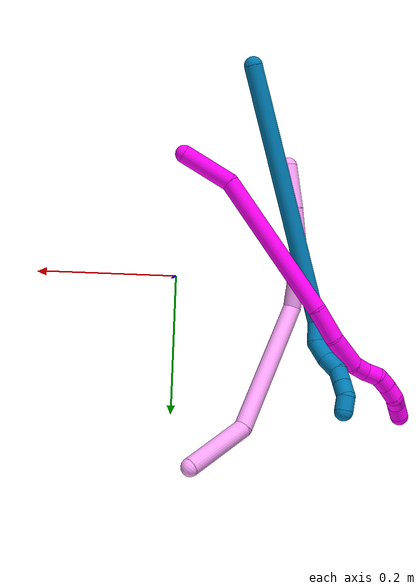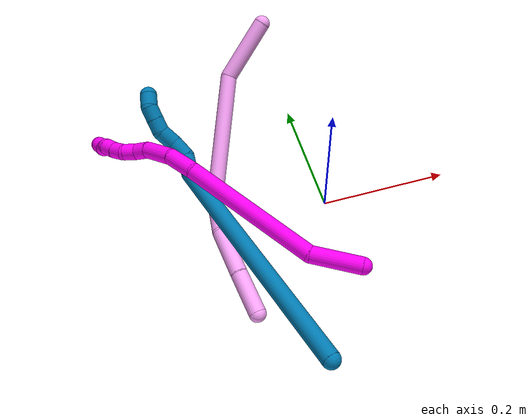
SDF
<sdf version="1.7">
 <world name="default">
  <model name="4">
   <static>0</static>
   <link name="4">
    <collision name="collision-cylinder-e_1_1_4">
     <pose>0.005808 0.022222 0.022075 -0.788719 0.183346 -0.076478</pose>
     <geometry><cylinder><radius>0.0125</radius><length>0.063713</length></cylinder></geometry>
     <surface>
      <friction><ode><mu>1.16</mu><mu2>1.16</mu2><slip1>0</slip1><slip2>0</slip2></ode></friction>
      <contact><ode><kp>1e+06</kp><kd>1</kd><max_vel>0</max_vel><min_depth>0.001</min_depth></ode></contact>
     </surface>
    </collision>
    <visual name="visual-cylinder-e_1_1_4">
     <pose>0.005808 0.022222 0.022075 -0.788719 0.183346 -0.076478</pose>
     <geometry><cylinder><radius>0.0125</radius><length>0.063713</length></cylinder></geometry>
     <material><ambient>1 0.65098 0.996078 1</ambient></material>
    </visual>
    <collision name="collision-cylinder-e_2_4_5">
     <pose>0.014452 0.070538 0.068873 -0.812358 0.078731 -0.033876</pose>
     <geometry><cylinder><radius>0.0125</radius><length>0.072116</length></cylinder></geometry>
     <surface>
      <friction><ode><mu>1.16</mu><mu2>1.16</mu2><slip1>0</slip1><slip2>0</slip2></ode></friction>
      <contact><ode><kp>1e+06</kp><kd>1</kd><max_vel>0</max_vel><min_depth>0.001</min_depth></ode></contact>
     </surface>
    </collision>
    <visual name="visual-cylinder-e_2_4_5">
     <pose>0.014452 0.070538 0.068873 -0.812358 0.078731 -0.033876</pose>
     <geometry><cylinder><radius>0.0125</radius><length>0.072116</length></cylinder></geometry>
     <material><ambient>1 0.65098 0.996078 1</ambient></material>
    </visual>
    <collision name="collision-cylinder-e_3_5_6">
     <pose>0.01163 0.12577 0.111494 -1.01998 -0.163966 0.091855</pose>
     <geometry><cylinder><radius>0.0125</radius><length>0.069322</length></cylinder></geometry>
     <surface>
      <friction><ode><mu>1.16</mu><mu2>1.16</mu2><slip1>0</slip1><slip2>0</slip2></ode></friction>
      <contact><ode><kp>1e+06</kp><kd>1</kd><max_vel>0</max_vel><min_depth>0.001</min_depth></ode></contact>
     </surface>
    </collision>
    <visual name="visual-cylinder-e_3_5_6">
     <pose>0.01163 0.12577 0.111494 -1.01998 -0.163966 0.091855</pose>
     <geometry><cylinder><radius>0.0125</radius><length>0.069322</length></cylinder></geometry>
     <material><ambient>1 0.65098 0.996078 1</ambient></material>
    </visual>
    <collision name="collision-cylinder-e_4_6_7">
     <pose>0.05038 0.240855 0.147373 -1.36456 0.468227 -0.38277</pose>
     <geometry><cylinder><radius>0.0125</radius><length>0.196795</length></cylinder></geometry>
     <surface>
      <friction><ode><mu>1.16</mu><mu2>1.16</mu2><slip1>0</slip1><slip2>0</slip2></ode></friction>
      <contact><ode><kp>1e+06</kp><kd>1</kd><max_vel>0</max_vel><min_depth>0.001</min_depth></ode></contact>
     </surface>
    </collision>
    <visual name="visual-cylinder-e_4_6_7">
     <pose>0.05038 0.240855 0.147373 -1.36456 0.468227 -0.38277</pose>
     <geometry><cylinder><radius>0.0125</radius><length>0.196795</length></cylinder></geometry>
     <material><ambient>1 0.65098 0.996078 1</ambient></material>
    </visual>
    <collision name="collision-cylinder-e_5_7_2">
     <pose>0.120227 0.365746 0.149871 -1.94918 0.545568 -0.782073</pose>
     <geometry><cylinder><radius>0.0125</radius><length>0.098053</length></cylinder></geometry>
     <surface>
      <friction><ode><mu>1.16</mu><mu2>1.16</mu2><slip1>0</slip1><slip2>0</slip2></ode></friction>
      <contact><ode><kp>1e+06</kp><kd>1</kd><max_vel>0</max_vel><min_depth>0.001</min_depth></ode></contact>
     </surface>
    </collision>
    <visual name="visual-cylinder-e_5_7_2">
     <pose>0.120227 0.365746 0.149871 -1.94918 0.545568 -0.782073</pose>
     <geometry><cylinder><radius>0.0125</radius><length>0.098053</length></cylinder></geometry>
     <material><ambient>1 0.65098 0.996078 1</ambient></material>
    </visual>
    <collision name="collision-sphere-2">
     <pose>0.145667 0.404691 0.134389 0 -0 0</pose>
     <geometry><sphere><radius>0.0125</radius></sphere></geometry>
     <surface>
      <friction><ode><mu>1.16</mu><mu2>1.16</mu2><slip1>0</slip1><slip2>0</slip2></ode></friction>
      <contact><ode><kp>1e+06</kp><kd>1</kd><max_vel>0</max_vel><min_depth>0.001</min_depth></ode></contact>
     </surface>
    </collision>
    <visual name="visual-sphere-2">
     <pose>0.145667 0.404691 0.134389 0 -0 0</pose>
     <geometry><sphere><radius>0.0125</radius></sphere></geometry>
     <material><ambient>1 0.65098 0.996078 1</ambient></material>
    </visual>
    <collision name="collision-sphere-7">
     <pose>0.094787 0.326801 0.165353 0 -0 0</pose>
     <geometry><sphere><radius>0.0125</radius></sphere></geometry>
     <surface>
      <friction><ode><mu>1.16</mu><mu2>1.16</mu2><slip1>0</slip1><slip2>0</slip2></ode></friction>
      <contact><ode><kp>1e+06</kp><kd>1</kd><max_vel>0</max_vel><min_depth>0.001</min_depth></ode></contact>
     </surface>
    </collision>
    <visual name="visual-sphere-7">
     <pose>0.094787 0.326801 0.165353 0 -0 0</pose>
     <geometry><sphere><radius>0.0125</radius></sphere></geometry>
     <material><ambient>1 0.65098 0.996078 1</ambient></material>
    </visual>
    <collision name="collision-sphere-6">
     <pose>0.005972 0.154908 0.129392 0 -0 0</pose>
     <geometry><sphere><radius>0.0125</radius></sphere></geometry>
     <surface>
      <friction><ode><mu>1.16</mu><mu2>1.16</mu2><slip1>0</slip1><slip2>0</slip2></ode></friction>
      <contact><ode><kp>1e+06</kp><kd>1</kd><max_vel>0</max_vel><min_depth>0.001</min_depth></ode></contact>
     </surface>
    </collision>
    <visual name="visual-sphere-6">
     <pose>0.005972 0.154908 0.129392 0 -0 0</pose>
     <geometry><sphere><radius>0.0125</radius></sphere></geometry>
     <material><ambient>1 0.65098 0.996078 1</ambient></material>
    </visual>
    <collision name="collision-sphere-5">
     <pose>0.017288 0.096631 0.093597 0 -0 0</pose>
     <geometry><sphere><radius>0.0125</radius></sphere></geometry>
     <surface>
      <friction><ode><mu>1.16</mu><mu2>1.16</mu2><slip1>0</slip1><slip2>0</slip2></ode></friction>
      <contact><ode><kp>1e+06</kp><kd>1</kd><max_vel>0</max_vel><min_depth>0.001</min_depth></ode></contact>
     </surface>
    </collision>
    <visual name="visual-sphere-5">
     <pose>0.017288 0.096631 0.093597 0 -0 0</pose>
     <geometry><sphere><radius>0.0125</radius></sphere></geometry>
     <material><ambient>1 0.65098 0.996078 1</ambient></material>
    </visual>
    <collision name="collision-sphere-1">
     <geometry><sphere><radius>0.0125</radius></sphere></geometry>
     <surface>
      <friction><ode><mu>1.16</mu><mu2>1.16</mu2><slip1>0</slip1><slip2>0</slip2></ode></friction>
      <contact><ode><kp>1e+06</kp><kd>1</kd><max_vel>0</max_vel><min_depth>0.001</min_depth></ode></contact>
     </surface>
    </collision>
    <visual name="visual-sphere-1">
     <geometry><sphere><radius>0.0125</radius></sphere></geometry>
     <material><ambient>1 0.65098 0.996078 1</ambient></material>
    </visual>
    <collision name="collision-sphere-4">
     <pose>0.011616 0.044444 0.044149 0 -0 0</pose>
     <geometry><sphere><radius>0.0125</radius></sphere></geometry>
     <surface>
      <friction><ode><mu>1.16</mu><mu2>1.16</mu2><slip1>0</slip1><slip2>0</slip2></ode></friction>
      <contact><ode><kp>1e+06</kp><kd>1</kd><max_vel>0</max_vel><min_depth>0.001</min_depth></ode></contact>
     </surface>
    </collision>
    <visual name="visual-sphere-4">
     <pose>0.011616 0.044444 0.044149 0 -0 0</pose>
     <geometry><sphere><radius>0.0125</radius></sphere></geometry>
     <material><ambient>1 0.65098 0.996078 1</ambient></material>
    </visual>
    <inertial>
     <pose>0.047843 0.196966 0.1156 0 -0 0</pose>
     <mass>0.5</mass>
     <inertia>
      <ixx>0.000417</ixx>
      <ixy>0</ixy>
      <ixz>0</ixz>
      <iyy>5.9e-05</iyy>
      <iyz>0</iyz>
      <izz>-0.001018</izz>
     </inertia>
    </inertial>
   </link>
   <pose>-0.155344 -0.163373 0.019619 2.39732 -1.50356 -3.03477</pose>
  </model>
  <model name="9">
   <static>0</static>
   <link name="9">
    <collision name="collision-cylinder-e_1_1_4">
     <pose>0.013655 0.170546 -0.053874 -1.87677 0.076202 -0.103942</pose>
     <geometry><cylinder><radius>0.0125</radius><length>0.358746</length></cylinder></geometry>
     <surface>
      <friction><ode><mu>1.16</mu><mu2>1.16</mu2><slip1>0</slip1><slip2>0</slip2></ode></friction>
      <contact><ode><kp>1e+06</kp><kd>1</kd><max_vel>0</max_vel><min_depth>0.001</min_depth></ode></contact>
     </surface>
    </collision>
    <visual name="visual-cylinder-e_1_1_4">
     <pose>0.013655 0.170546 -0.053874 -1.87677 0.076202 -0.103942</pose>
     <geometry><cylinder><radius>0.0125</radius><length>0.358746</length></cylinder></geometry>
     <material><ambient>0 0.490196 0.709804 1</ambient></material>
    </visual>
    <collision name="collision-cylinder-e_2_4_5">
     <pose>0.035435 0.352557 -0.110769 -1.82847 0.600714 -0.76433</pose>
     <geometry><cylinder><radius>0.0125</radius><length>0.028748</length></cylinder></geometry>
     <surface>
      <friction><ode><mu>1.16</mu><mu2>1.16</mu2><slip1>0</slip1><slip2>0</slip2></ode></friction>
      <contact><ode><kp>1e+06</kp><kd>1</kd><max_vel>0</max_vel><min_depth>0.001</min_depth></ode></contact>
     </surface>
    </collision>
    <visual name="visual-cylinder-e_2_4_5">
     <pose>0.035435 0.352557 -0.110769 -1.82847 0.600714 -0.76433</pose>
     <geometry><cylinder><radius>0.0125</radius><length>0.028748</length></cylinder></geometry>
     <material><ambient>0 0.490196 0.709804 1</ambient></material>
    </visual>
    <collision name="collision-cylinder-e_3_5_6">
     <pose>0.047285 0.376499 -0.110614 -1.32146 0.281658 -0.2195</pose>
     <geometry><cylinder><radius>0.0125</radius><length>0.026804</length></cylinder></geometry>
     <surface>
      <friction><ode><mu>1.16</mu><mu2>1.16</mu2><slip1>0</slip1><slip2>0</slip2></ode></friction>
      <contact><ode><kp>1e+06</kp><kd>1</kd><max_vel>0</max_vel><min_depth>0.001</min_depth></ode></contact>
     </surface>
    </collision>
    <visual name="visual-cylinder-e_3_5_6">
     <pose>0.047285 0.376499 -0.110614 -1.32146 0.281658 -0.2195</pose>
     <geometry><cylinder><radius>0.0125</radius><length>0.026804</length></cylinder></geometry>
     <material><ambient>0 0.490196 0.709804 1</ambient></material>
    </visual>
    <collision name="collision-cylinder-e_4_6_7">
     <pose>0.054361 0.399563 -0.101305 -1.04582 0.267338 -0.154717</pose>
     <geometry><cylinder><radius>0.0125</radius><length>0.025372</length></cylinder></geometry>
     <surface>
      <friction><ode><mu>1.16</mu><mu2>1.16</mu2><slip1>0</slip1><slip2>0</slip2></ode></friction>
      <contact><ode><kp>1e+06</kp><kd>1</kd><max_vel>0</max_vel><min_depth>0.001</min_depth></ode></contact>
     </surface>
    </collision>
    <visual name="visual-cylinder-e_4_6_7">
     <pose>0.054361 0.399563 -0.101305 -1.04582 0.267338 -0.154717</pose>
     <geometry><cylinder><radius>0.0125</radius><length>0.025372</length></cylinder></geometry>
     <material><ambient>0 0.490196 0.709804 1</ambient></material>
    </visual>
    <collision name="collision-cylinder-e_5_7_8">
     <pose>0.063416 0.418172 -0.093246 -1.33514 0.604918 -0.482378</pose>
     <geometry><cylinder><radius>0.0125</radius><length>0.02006</length></cylinder></geometry>
     <surface>
      <friction><ode><mu>1.16</mu><mu2>1.16</mu2><slip1>0</slip1><slip2>0</slip2></ode></friction>
      <contact><ode><kp>1e+06</kp><kd>1</kd><max_vel>0</max_vel><min_depth>0.001</min_depth></ode></contact>
     </surface>
    </collision>
    <visual name="visual-cylinder-e_5_7_8">
     <pose>0.063416 0.418172 -0.093246 -1.33514 0.604918 -0.482378</pose>
     <geometry><cylinder><radius>0.0125</radius><length>0.02006</length></cylinder></geometry>
     <material><ambient>0 0.490196 0.709804 1</ambient></material>
    </visual>
    <collision name="collision-cylinder-e_6_8_9">
     <pose>0.074918 0.434286 -0.089488 -1.34817 0.609923 -0.492753</pose>
     <geometry><cylinder><radius>0.0125</radius><length>0.020243</length></cylinder></geometry>
     <surface>
      <friction><ode><mu>1.16</mu><mu2>1.16</mu2><slip1>0</slip1><slip2>0</slip2></ode></friction>
      <contact><ode><kp>1e+06</kp><kd>1</kd><max_vel>0</max_vel><min_depth>0.001</min_depth></ode></contact>
     </surface>
    </collision>
    <visual name="visual-cylinder-e_6_8_9">
     <pose>0.074918 0.434286 -0.089488 -1.34817 0.609923 -0.492753</pose>
     <geometry><cylinder><radius>0.0125</radius><length>0.020243</length></cylinder></geometry>
     <material><ambient>0 0.490196 0.709804 1</ambient></material>
    </visual>
    <collision name="collision-cylinder-e_7_9_2">
     <pose>0.086797 0.449687 -0.090798 -1.97675 0.652672 -0.949324</pose>
     <geometry><cylinder><radius>0.0125</radius><length>0.020028</length></cylinder></geometry>
     <surface>
      <friction><ode><mu>1.16</mu><mu2>1.16</mu2><slip1>0</slip1><slip2>0</slip2></ode></friction>
      <contact><ode><kp>1e+06</kp><kd>1</kd><max_vel>0</max_vel><min_depth>0.001</min_depth></ode></contact>
     </surface>
    </collision>
    <visual name="visual-cylinder-e_7_9_2">
     <pose>0.086797 0.449687 -0.090798 -1.97675 0.652672 -0.949324</pose>
     <geometry><cylinder><radius>0.0125</radius><length>0.020028</length></cylinder></geometry>
     <material><ambient>0 0.490196 0.709804 1</ambient></material>
    </visual>
    <collision name="collision-sphere-2">
     <pose>0.092878 0.456996 -0.09394 0 -0 0</pose>
     <geometry><sphere><radius>0.0125</radius></sphere></geometry>
     <surface>
      <friction><ode><mu>1.16</mu><mu2>1.16</mu2><slip1>0</slip1><slip2>0</slip2></ode></friction>
      <contact><ode><kp>1e+06</kp><kd>1</kd><max_vel>0</max_vel><min_depth>0.001</min_depth></ode></contact>
     </surface>
    </collision>
    <visual name="visual-sphere-2">
     <pose>0.092878 0.456996 -0.09394 0 -0 0</pose>
     <geometry><sphere><radius>0.0125</radius></sphere></geometry>
     <material><ambient>0 0.490196 0.709804 1</ambient></material>
    </visual>
    <collision name="collision-sphere-9">
     <pose>0.080715 0.442378 -0.087657 0 -0 0</pose>
     <geometry><sphere><radius>0.0125</radius></sphere></geometry>
     <surface>
      <friction><ode><mu>1.16</mu><mu2>1.16</mu2><slip1>0</slip1><slip2>0</slip2></ode></friction>
      <contact><ode><kp>1e+06</kp><kd>1</kd><max_vel>0</max_vel><min_depth>0.001</min_depth></ode></contact>
     </surface>
    </collision>
    <visual name="visual-sphere-9">
     <pose>0.080715 0.442378 -0.087657 0 -0 0</pose>
     <geometry><sphere><radius>0.0125</radius></sphere></geometry>
     <material><ambient>0 0.490196 0.709804 1</ambient></material>
    </visual>
    <collision name="collision-sphere-4">
     <pose>0.027311 0.341091 -0.107747 0 -0 0</pose>
     <geometry><sphere><radius>0.0125</radius></sphere></geometry>
     <surface>
      <friction><ode><mu>1.16</mu><mu2>1.16</mu2><slip1>0</slip1><slip2>0</slip2></ode></friction>
      <contact><ode><kp>1e+06</kp><kd>1</kd><max_vel>0</max_vel><min_depth>0.001</min_depth></ode></contact>
     </surface>
    </collision>
    <visual name="visual-sphere-4">
     <pose>0.027311 0.341091 -0.107747 0 -0 0</pose>
     <geometry><sphere><radius>0.0125</radius></sphere></geometry>
     <material><ambient>0 0.490196 0.709804 1</ambient></material>
    </visual>
    <collision name="collision-sphere-1">
     <geometry><sphere><radius>0.0125</radius></sphere></geometry>
     <surface>
      <friction><ode><mu>1.16</mu><mu2>1.16</mu2><slip1>0</slip1><slip2>0</slip2></ode></friction>
      <contact><ode><kp>1e+06</kp><kd>1</kd><max_vel>0</max_vel><min_depth>0.001</min_depth></ode></contact>
     </surface>
    </collision>
    <visual name="visual-sphere-1">
     <geometry><sphere><radius>0.0125</radius></sphere></geometry>
     <material><ambient>0 0.490196 0.709804 1</ambient></material>
    </visual>
    <collision name="collision-sphere-8">
     <pose>0.06912 0.426195 -0.09132 0 -0 0</pose>
     <geometry><sphere><radius>0.0125</radius></sphere></geometry>
     <surface>
      <friction><ode><mu>1.16</mu><mu2>1.16</mu2><slip1>0</slip1><slip2>0</slip2></ode></friction>
      <contact><ode><kp>1e+06</kp><kd>1</kd><max_vel>0</max_vel><min_depth>0.001</min_depth></ode></contact>
     </surface>
    </collision>
    <visual name="visual-sphere-8">
     <pose>0.06912 0.426195 -0.09132 0 -0 0</pose>
     <geometry><sphere><radius>0.0125</radius></sphere></geometry>
     <material><ambient>0 0.490196 0.709804 1</ambient></material>
    </visual>
    <collision name="collision-sphere-5">
     <pose>0.04356 0.364024 -0.113791 0 -0 0</pose>
     <geometry><sphere><radius>0.0125</radius></sphere></geometry>
     <surface>
      <friction><ode><mu>1.16</mu><mu2>1.16</mu2><slip1>0</slip1><slip2>0</slip2></ode></friction>
      <contact><ode><kp>1e+06</kp><kd>1</kd><max_vel>0</max_vel><min_depth>0.001</min_depth></ode></contact>
     </surface>
    </collision>
    <visual name="visual-sphere-5">
     <pose>0.04356 0.364024 -0.113791 0 -0 0</pose>
     <geometry><sphere><radius>0.0125</radius></sphere></geometry>
     <material><ambient>0 0.490196 0.709804 1</ambient></material>
    </visual>
    <collision name="collision-sphere-6">
     <pose>0.05101 0.388975 -0.107437 0 -0 0</pose>
     <geometry><sphere><radius>0.0125</radius></sphere></geometry>
     <surface>
      <friction><ode><mu>1.16</mu><mu2>1.16</mu2><slip1>0</slip1><slip2>0</slip2></ode></friction>
      <contact><ode><kp>1e+06</kp><kd>1</kd><max_vel>0</max_vel><min_depth>0.001</min_depth></ode></contact>
     </surface>
    </collision>
    <visual name="visual-sphere-6">
     <pose>0.05101 0.388975 -0.107437 0 -0 0</pose>
     <geometry><sphere><radius>0.0125</radius></sphere></geometry>
     <material><ambient>0 0.490196 0.709804 1</ambient></material>
    </visual>
    <collision name="collision-sphere-7">
     <pose>0.057712 0.41015 -0.095173 0 -0 0</pose>
     <geometry><sphere><radius>0.0125</radius></sphere></geometry>
     <surface>
      <friction><ode><mu>1.16</mu><mu2>1.16</mu2><slip1>0</slip1><slip2>0</slip2></ode></friction>
      <contact><ode><kp>1e+06</kp><kd>1</kd><max_vel>0</max_vel><min_depth>0.001</min_depth></ode></contact>
     </surface>
    </collision>
    <visual name="visual-sphere-7">
     <pose>0.057712 0.41015 -0.095173 0 -0 0</pose>
     <geometry><sphere><radius>0.0125</radius></sphere></geometry>
     <material><ambient>0 0.490196 0.709804 1</ambient></material>
    </visual>
    <inertial>
     <pose>0.026182 0.235466 -0.067094 0 -0 0</pose>
     <mass>0.5</mass>
     <inertia>
      <ixx>0.003442</ixx>
      <ixy>0</ixy>
      <ixz>0</ixz>
      <iyy>-0.001492</iyy>
      <iyz>0</iyz>
      <izz>-0.003989</izz>
     </inertia>
    </inertial>
   </link>
   <pose>-0.096752 -0.288503 0.108076 0.103351 -0.849054 0.489185</pose>
  </model>
  <model name="10">
   <static>0</static>
   <link name="10">
    <collision name="collision-cylinder-e_1_1_4">
     <pose>-0.031517 0.018677 0.003099 -1.40637 -1.02985 0.894541</pose>
     <geometry><cylinder><radius>0.0125</radius><length>0.073533</length></cylinder></geometry>
     <surface>
      <friction><ode><mu>1.16</mu><mu2>1.16</mu2><slip1>0</slip1><slip2>0</slip2></ode></friction>
      <contact><ode><kp>1e+06</kp><kd>1</kd><max_vel>0</max_vel><min_depth>0.001</min_depth></ode></contact>
     </surface>
    </collision>
    <visual name="visual-cylinder-e_1_1_4">
     <pose>-0.031517 0.018677 0.003099 -1.40637 -1.02985 0.894541</pose>
     <geometry><cylinder><radius>0.0125</radius><length>0.073533</length></cylinder></geometry>
     <material><ambient>1 0 0.964706 1</ambient></material>
    </visual>
    <collision name="collision-cylinder-e_2_4_5">
     <pose>-0.124984 0.12137 0.000315 -1.64071 -0.634199 0.676834</pose>
     <geometry><cylinder><radius>0.0125</radius><length>0.209102</length></cylinder></geometry>
     <surface>
      <friction><ode><mu>1.16</mu><mu2>1.16</mu2><slip1>0</slip1><slip2>0</slip2></ode></friction>
      <contact><ode><kp>1e+06</kp><kd>1</kd><max_vel>0</max_vel><min_depth>0.001</min_depth></ode></contact>
     </surface>
    </collision>
    <visual name="visual-cylinder-e_2_4_5">
     <pose>-0.124984 0.12137 0.000315 -1.64071 -0.634199 0.676834</pose>
     <geometry><cylinder><radius>0.0125</radius><length>0.209102</length></cylinder></geometry>
     <material><ambient>1 0 0.964706 1</ambient></material>
    </visual>
    <collision name="collision-cylinder-e_3_5_6">
     <pose>-0.201194 0.222757 -0.011775 -1.91399 -0.65804 0.902469</pose>
     <geometry><cylinder><radius>0.0125</radius><length>0.046632</length></cylinder></geometry>
     <surface>
      <friction><ode><mu>1.16</mu><mu2>1.16</mu2><slip1>0</slip1><slip2>0</slip2></ode></friction>
      <contact><ode><kp>1e+06</kp><kd>1</kd><max_vel>0</max_vel><min_depth>0.001</min_depth></ode></contact>
     </surface>
    </collision>
    <visual name="visual-cylinder-e_3_5_6">
     <pose>-0.201194 0.222757 -0.011775 -1.91399 -0.65804 0.902469</pose>
     <geometry><cylinder><radius>0.0125</radius><length>0.046632</length></cylinder></geometry>
     <material><ambient>1 0 0.964706 1</ambient></material>
    </visual>
    <collision name="collision-cylinder-e_4_6_7">
     <pose>-0.23337 0.25393 -0.027279 -2.16354 -0.822322 1.37287</pose>
     <geometry><cylinder><radius>0.0125</radius><length>0.048903</length></cylinder></geometry>
     <surface>
      <friction><ode><mu>1.16</mu><mu2>1.16</mu2><slip1>0</slip1><slip2>0</slip2></ode></friction>
      <contact><ode><kp>1e+06</kp><kd>1</kd><max_vel>0</max_vel><min_depth>0.001</min_depth></ode></contact>
     </surface>
    </collision>
    <visual name="visual-cylinder-e_4_6_7">
     <pose>-0.23337 0.25393 -0.027279 -2.16354 -0.822322 1.37287</pose>
     <geometry><cylinder><radius>0.0125</radius><length>0.048903</length></cylinder></geometry>
     <material><ambient>1 0 0.964706 1</ambient></material>
    </visual>
    <collision name="collision-cylinder-e_5_7_8">
     <pose>-0.261009 0.270551 -0.039906 -2.43934 -1.14883 2.11155</pose>
     <geometry><cylinder><radius>0.0125</radius><length>0.021315</length></cylinder></geometry>
     <surface>
      <friction><ode><mu>1.16</mu><mu2>1.16</mu2><slip1>0</slip1><slip2>0</slip2></ode></friction>
      <contact><ode><kp>1e+06</kp><kd>1</kd><max_vel>0</max_vel><min_depth>0.001</min_depth></ode></contact>
     </surface>
    </collision>
    <visual name="visual-cylinder-e_5_7_8">
     <pose>-0.261009 0.270551 -0.039906 -2.43934 -1.14883 2.11155</pose>
     <geometry><cylinder><radius>0.0125</radius><length>0.021315</length></cylinder></geometry>
     <material><ambient>1 0 0.964706 1</ambient></material>
    </visual>
    <collision name="collision-cylinder-e_6_8_9">
     <pose>-0.280333 0.276322 -0.042894 -1.45476 -1.27061 1.16162</pose>
     <geometry><cylinder><radius>0.0125</radius><length>0.020102</length></cylinder></geometry>
     <surface>
      <friction><ode><mu>1.16</mu><mu2>1.16</mu2><slip1>0</slip1><slip2>0</slip2></ode></friction>
      <contact><ode><kp>1e+06</kp><kd>1</kd><max_vel>0</max_vel><min_depth>0.001</min_depth></ode></contact>
     </surface>
    </collision>
    <visual name="visual-cylinder-e_6_8_9">
     <pose>-0.280333 0.276322 -0.042894 -1.45476 -1.27061 1.16162</pose>
     <geometry><cylinder><radius>0.0125</radius><length>0.020102</length></cylinder></geometry>
     <material><ambient>1 0 0.964706 1</ambient></material>
    </visual>
    <collision name="collision-cylinder-e_7_9_10">
     <pose>-0.297714 0.284446 -0.046253 -2.19221 -0.885371 1.49024</pose>
     <geometry><cylinder><radius>0.0125</radius><length>0.020097</length></cylinder></geometry>
     <surface>
      <friction><ode><mu>1.16</mu><mu2>1.16</mu2><slip1>0</slip1><slip2>0</slip2></ode></friction>
      <contact><ode><kp>1e+06</kp><kd>1</kd><max_vel>0</max_vel><min_depth>0.001</min_depth></ode></contact>
     </surface>
    </collision>
    <visual name="visual-cylinder-e_7_9_10">
     <pose>-0.297714 0.284446 -0.046253 -2.19221 -0.885371 1.49024</pose>
     <geometry><cylinder><radius>0.0125</radius><length>0.020097</length></cylinder></geometry>
     <material><ambient>1 0 0.964706 1</ambient></material>
    </visual>
    <collision name="collision-cylinder-e_8_10_11">
     <pose>-0.312339 0.296142 -0.053487 -2.06682 -0.745311 1.16122</pose>
     <geometry><cylinder><radius>0.0125</radius><length>0.02019</length></cylinder></geometry>
     <surface>
      <friction><ode><mu>1.16</mu><mu2>1.16</mu2><slip1>0</slip1><slip2>0</slip2></ode></friction>
      <contact><ode><kp>1e+06</kp><kd>1</kd><max_vel>0</max_vel><min_depth>0.001</min_depth></ode></contact>
     </surface>
    </collision>
    <visual name="visual-cylinder-e_8_10_11">
     <pose>-0.312339 0.296142 -0.053487 -2.06682 -0.745311 1.16122</pose>
     <geometry><cylinder><radius>0.0125</radius><length>0.02019</length></cylinder></geometry>
     <material><ambient>1 0 0.964706 1</ambient></material>
    </visual>
    <collision name="collision-cylinder-e_9_11_12">
     <pose>-0.324585 0.304816 -0.06521 -2.88498 -0.567602 2.3087</pose>
     <geometry><cylinder><radius>0.0125</radius><length>0.020087</length></cylinder></geometry>
     <surface>
      <friction><ode><mu>1.16</mu><mu2>1.16</mu2><slip1>0</slip1><slip2>0</slip2></ode></friction>
      <contact><ode><kp>1e+06</kp><kd>1</kd><max_vel>0</max_vel><min_depth>0.001</min_depth></ode></contact>
     </surface>
    </collision>
    <visual name="visual-cylinder-e_9_11_12">
     <pose>-0.324585 0.304816 -0.06521 -2.88498 -0.567602 2.3087</pose>
     <geometry><cylinder><radius>0.0125</radius><length>0.020087</length></cylinder></geometry>
     <material><ambient>1 0 0.964706 1</ambient></material>
    </visual>
    <collision name="collision-cylinder-e_10_12_2">
     <pose>-0.334899 0.313359 -0.079346 -2.31983 -0.512642 1.08313</pose>
     <geometry><cylinder><radius>0.0125</radius><length>0.020037</length></cylinder></geometry>
     <surface>
      <friction><ode><mu>1.16</mu><mu2>1.16</mu2><slip1>0</slip1><slip2>0</slip2></ode></friction>
      <contact><ode><kp>1e+06</kp><kd>1</kd><max_vel>0</max_vel><min_depth>0.001</min_depth></ode></contact>
     </surface>
    </collision>
    <visual name="visual-cylinder-e_10_12_2">
     <pose>-0.334899 0.313359 -0.079346 -2.31983 -0.512642 1.08313</pose>
     <geometry><cylinder><radius>0.0125</radius><length>0.020037</length></cylinder></geometry>
     <material><ambient>1 0 0.964706 1</ambient></material>
    </visual>
    <collision name="collision-sphere-2">
     <pose>-0.339813 0.319753 -0.085291 0 -0 0</pose>
     <geometry><sphere><radius>0.0125</radius></sphere></geometry>
     <surface>
      <friction><ode><mu>1.16</mu><mu2>1.16</mu2><slip1>0</slip1><slip2>0</slip2></ode></friction>
      <contact><ode><kp>1e+06</kp><kd>1</kd><max_vel>0</max_vel><min_depth>0.001</min_depth></ode></contact>
     </surface>
    </collision>
    <visual name="visual-sphere-2">
     <pose>-0.339813 0.319753 -0.085291 0 -0 0</pose>
     <geometry><sphere><radius>0.0125</radius></sphere></geometry>
     <material><ambient>1 0 0.964706 1</ambient></material>
    </visual>
    <collision name="collision-sphere-12">
     <pose>-0.329985 0.306965 -0.073401 0 -0 0</pose>
     <geometry><sphere><radius>0.0125</radius></sphere></geometry>
     <surface>
      <friction><ode><mu>1.16</mu><mu2>1.16</mu2><slip1>0</slip1><slip2>0</slip2></ode></friction>
      <contact><ode><kp>1e+06</kp><kd>1</kd><max_vel>0</max_vel><min_depth>0.001</min_depth></ode></contact>
     </surface>
    </collision>
    <visual name="visual-sphere-12">
     <pose>-0.329985 0.306965 -0.073401 0 -0 0</pose>
     <geometry><sphere><radius>0.0125</radius></sphere></geometry>
     <material><ambient>1 0 0.964706 1</ambient></material>
    </visual>
    <collision name="collision-sphere-11">
     <pose>-0.319186 0.302667 -0.057018 0 -0 0</pose>
     <geometry><sphere><radius>0.0125</radius></sphere></geometry>
     <surface>
      <friction><ode><mu>1.16</mu><mu2>1.16</mu2><slip1>0</slip1><slip2>0</slip2></ode></friction>
      <contact><ode><kp>1e+06</kp><kd>1</kd><max_vel>0</max_vel><min_depth>0.001</min_depth></ode></contact>
     </surface>
    </collision>
    <visual name="visual-sphere-11">
     <pose>-0.319186 0.302667 -0.057018 0 -0 0</pose>
     <geometry><sphere><radius>0.0125</radius></sphere></geometry>
     <material><ambient>1 0 0.964706 1</ambient></material>
    </visual>
    <collision name="collision-sphere-10">
     <pose>-0.305493 0.289618 -0.049957 0 -0 0</pose>
     <geometry><sphere><radius>0.0125</radius></sphere></geometry>
     <surface>
      <friction><ode><mu>1.16</mu><mu2>1.16</mu2><slip1>0</slip1><slip2>0</slip2></ode></friction>
      <contact><ode><kp>1e+06</kp><kd>1</kd><max_vel>0</max_vel><min_depth>0.001</min_depth></ode></contact>
     </surface>
    </collision>
    <visual name="visual-sphere-10">
     <pose>-0.305493 0.289618 -0.049957 0 -0 0</pose>
     <geometry><sphere><radius>0.0125</radius></sphere></geometry>
     <material><ambient>1 0 0.964706 1</ambient></material>
    </visual>
    <collision name="collision-sphere-9">
     <pose>-0.289935 0.279274 -0.04255 0 -0 0</pose>
     <geometry><sphere><radius>0.0125</radius></sphere></geometry>
     <surface>
      <friction><ode><mu>1.16</mu><mu2>1.16</mu2><slip1>0</slip1><slip2>0</slip2></ode></friction>
      <contact><ode><kp>1e+06</kp><kd>1</kd><max_vel>0</max_vel><min_depth>0.001</min_depth></ode></contact>
     </surface>
    </collision>
    <visual name="visual-sphere-9">
     <pose>-0.289935 0.279274 -0.04255 0 -0 0</pose>
     <geometry><sphere><radius>0.0125</radius></sphere></geometry>
     <material><ambient>1 0 0.964706 1</ambient></material>
    </visual>
    <collision name="collision-sphere-4">
     <pose>-0.063034 0.037355 0.006198 0 -0 0</pose>
     <geometry><sphere><radius>0.0125</radius></sphere></geometry>
     <surface>
      <friction><ode><mu>1.16</mu><mu2>1.16</mu2><slip1>0</slip1><slip2>0</slip2></ode></friction>
      <contact><ode><kp>1e+06</kp><kd>1</kd><max_vel>0</max_vel><min_depth>0.001</min_depth></ode></contact>
     </surface>
    </collision>
    <visual name="visual-sphere-4">
     <pose>-0.063034 0.037355 0.006198 0 -0 0</pose>
     <geometry><sphere><radius>0.0125</radius></sphere></geometry>
     <material><ambient>1 0 0.964706 1</ambient></material>
    </visual>
    <collision name="collision-sphere-1">
     <geometry><sphere><radius>0.0125</radius></sphere></geometry>
     <surface>
      <friction><ode><mu>1.16</mu><mu2>1.16</mu2><slip1>0</slip1><slip2>0</slip2></ode></friction>
      <contact><ode><kp>1e+06</kp><kd>1</kd><max_vel>0</max_vel><min_depth>0.001</min_depth></ode></contact>
     </surface>
    </collision>
    <visual name="visual-sphere-1">
     <geometry><sphere><radius>0.0125</radius></sphere></geometry>
     <material><ambient>1 0 0.964706 1</ambient></material>
    </visual>
    <collision name="collision-sphere-8">
     <pose>-0.270731 0.27337 -0.043239 0 -0 0</pose>
     <geometry><sphere><radius>0.0125</radius></sphere></geometry>
     <surface>
      <friction><ode><mu>1.16</mu><mu2>1.16</mu2><slip1>0</slip1><slip2>0</slip2></ode></friction>
      <contact><ode><kp>1e+06</kp><kd>1</kd><max_vel>0</max_vel><min_depth>0.001</min_depth></ode></contact>
     </surface>
    </collision>
    <visual name="visual-sphere-8">
     <pose>-0.270731 0.27337 -0.043239 0 -0 0</pose>
     <geometry><sphere><radius>0.0125</radius></sphere></geometry>
     <material><ambient>1 0 0.964706 1</ambient></material>
    </visual>
    <collision name="collision-sphere-5">
     <pose>-0.186934 0.205385 -0.005568 0 -0 0</pose>
     <geometry><sphere><radius>0.0125</radius></sphere></geometry>
     <surface>
      <friction><ode><mu>1.16</mu><mu2>1.16</mu2><slip1>0</slip1><slip2>0</slip2></ode></friction>
      <contact><ode><kp>1e+06</kp><kd>1</kd><max_vel>0</max_vel><min_depth>0.001</min_depth></ode></contact>
     </surface>
    </collision>
    <visual name="visual-sphere-5">
     <pose>-0.186934 0.205385 -0.005568 0 -0 0</pose>
     <geometry><sphere><radius>0.0125</radius></sphere></geometry>
     <material><ambient>1 0 0.964706 1</ambient></material>
    </visual>
    <collision name="collision-sphere-6">
     <pose>-0.215453 0.240129 -0.017983 0 -0 0</pose>
     <geometry><sphere><radius>0.0125</radius></sphere></geometry>
     <surface>
      <friction><ode><mu>1.16</mu><mu2>1.16</mu2><slip1>0</slip1><slip2>0</slip2></ode></friction>
      <contact><ode><kp>1e+06</kp><kd>1</kd><max_vel>0</max_vel><min_depth>0.001</min_depth></ode></contact>
     </surface>
    </collision>
    <visual name="visual-sphere-6">
     <pose>-0.215453 0.240129 -0.017983 0 -0 0</pose>
     <geometry><sphere><radius>0.0125</radius></sphere></geometry>
     <material><ambient>1 0 0.964706 1</ambient></material>
    </visual>
    <collision name="collision-sphere-7">
     <pose>-0.251286 0.267731 -0.036574 0 -0 0</pose>
     <geometry><sphere><radius>0.0125</radius></sphere></geometry>
     <surface>
      <friction><ode><mu>1.16</mu><mu2>1.16</mu2><slip1>0</slip1><slip2>0</slip2></ode></friction>
      <contact><ode><kp>1e+06</kp><kd>1</kd><max_vel>0</max_vel><min_depth>0.001</min_depth></ode></contact>
     </surface>
    </collision>
    <visual name="visual-sphere-7">
     <pose>-0.251286 0.267731 -0.036574 0 -0 0</pose>
     <geometry><sphere><radius>0.0125</radius></sphere></geometry>
     <material><ambient>1 0 0.964706 1</ambient></material>
    </visual>
    <inertial>
     <pose>-0.17193 0.169953 -0.016423 0 -0 0</pose>
     <mass>0.5</mass>
     <inertia>
      <ixx>0.000897</ixx>
      <ixy>0</ixy>
      <ixz>0</ixz>
      <iyy>0.000731</iyy>
      <iyz>0</iyz>
      <izz>-0.000153</izz>
     </inertia>
    </inertial>
   </link>
   <pose>-0.00795 -0.168487 0.086129 0.433075 -0.289258 -0.081236</pose>
  </model>
 </world>
</sdf>
